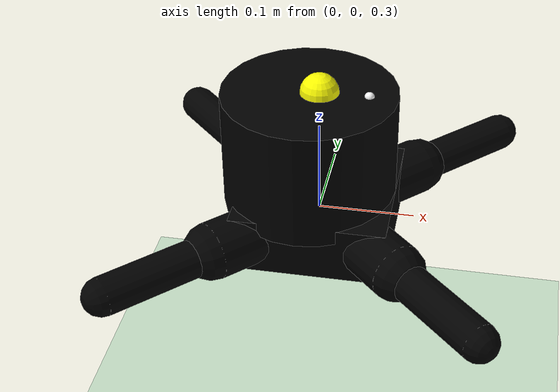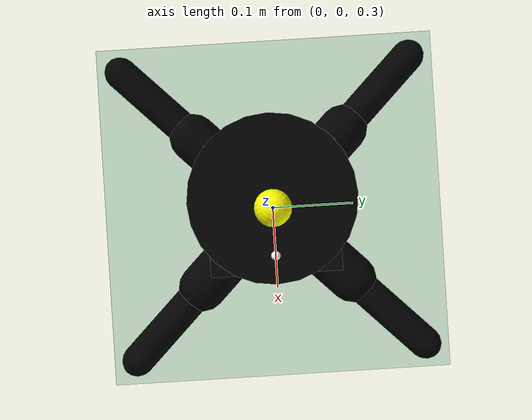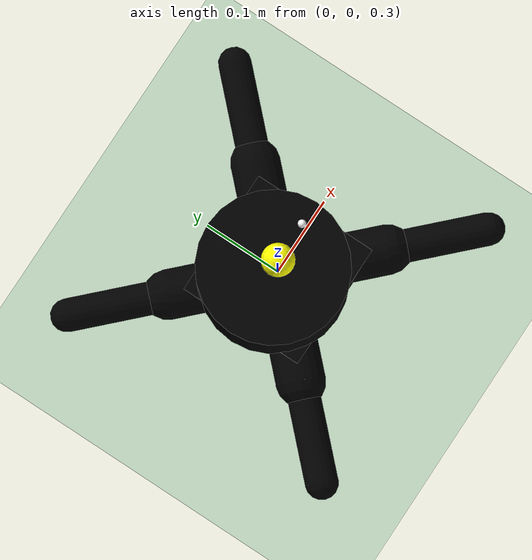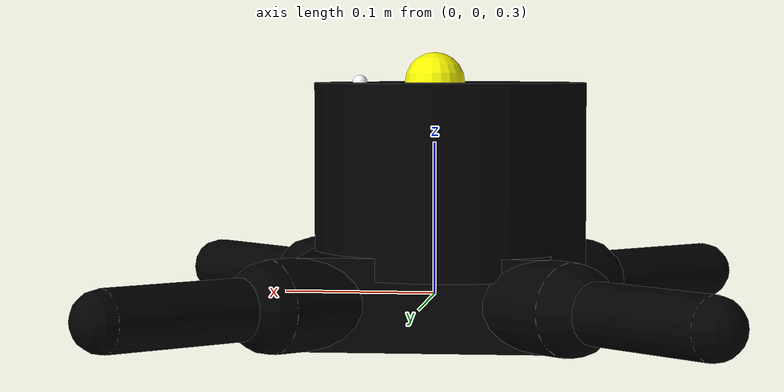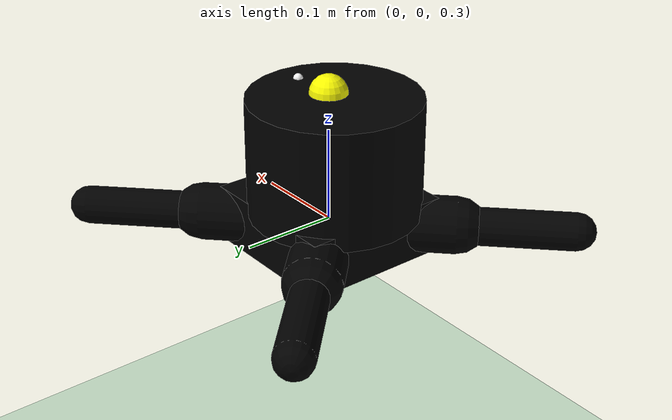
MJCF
<mujoco model="ant">
  <compiler angle="degree" coordinate="local" inertiafromgeom="true"/>
  <option integrator="RK4" timestep="0.01"/>
  <custom>
    <numeric data="0.0 0.0 0.55 1.0 0.0 0.0 0.0 0.0 1.0 0.0 -1.0 0.0 -1.0 0.0 1.0" name="init_qpos"/>
  </custom>
  <default>
    <joint armature="1" damping="1" limited="true"/>
    <geom conaffinity="0" condim="3" density="5.0" friction="1.5 0.1 0.1" margin="0.01" rgba="0.8 0.6 0.4 1"/>
  </default>
  <asset>
    <texture name="ceiling" builtin="gradient" height="100" rgb1="1 1 1" rgb2="0 0 0" type="skybox" width="100" mark="random" random="0.05" markrgb="0.5 0.5 0.5"/>
    <texture builtin="flat" height="1278" mark="cross" markrgb="1 1 1" name="texgeom" random="0.01" rgb1="0.8 0.6 0.4" rgb2="0.8 0.6 0.4" type="cube" width="127"/>
    <texture name="texplane" type="2d" builtin="checker" rgb1="0.2 0.2 0.2" rgb2="0.8 0.8 0.8" width="100" height="100" />
    <material name="MatPlane" reflectance="0.1" shininess="0" specular="1" texrepeat="60 60" texture="texplane"/>
    <material name="geom" texture="texgeom" texuniform="true"/>
  </asset>
  <worldbody>
    <light cutoff="90" diffuse="0.7 0.7 0.7" dir="0 0 -1" directional="false" exponent="10" pos="0 0 2" specular=".3 .3 .3"/>
    <geom conaffinity="1" condim="3" material="MatPlane" name="floor" pos="0 0 0" rgba="0.8 0.9 0.8 1" size="20 20 5" type="plane"/>
     <body name="torso" pos="0 0 0.3">
      <camera name="track" mode="trackcom" pos="0 -2 2" xyaxes="1 0 0 0 1 1"/>
      <camera euler="90 -90 0" fovy="120" name="rgb" pos="0.08 0.0 0.08"/>
      <site name="imu" rgba="1 1 0 1" pos="0.0 0.0 0.14" size="0.02" euler="0 180 0"/>
      <site name="front" rgba="1 1 1 1" pos="0.05 0 0.14" size="0.005"/>
      <geom name="base" pos="0 0 0" size="0.08 0.08 0.03" type="box" mass="0.359" rgba="0 0 0 1"/>
      <geom name="raspy_battery" fromto="-0.01 0 0.015 -0.01 0 0.14" size="0.09" type="cylinder" mass="0.612" rgba="0 0 0 1"/>
      <joint armature="0" damping="0" limited="false" margin="0.01" name="root" pos="0 0 0" type="free"/>

      <body name="front_left_leg" pos="0 0 0">
        <body name="aux_1" pos="0.057 0.057 0">
          <joint axis="0 0 1" name="hip_1" pos="0.0 0.0 0.0" range="-40 40" type="hinge"/>
          <geom fromto="0.0 0.0 0.0 0.037 0.037 0.0" name="hip_1_geom" size="0.03" type="capsule" mass="0.019" rgba="0 0 0 1"/>
          <body name="front_left_ankle" pos="0.037 0.037 0">
            <joint axis="-1 1 0" name="ankle_1" pos="0.0 0.0 0.0" range="0 60" type="hinge"/>
            <geom fromto="0.0 0.0 0.0 0.086 0.086 0.0" name="ankle_1_geom" size="0.02" type="capsule" mass="0.077" rgba="0 0 0 1"/>
          </body>
        </body>
      </body>
      <body name="rear_left_leg" pos="0 0 0">
        <body name="aux_2" pos="-0.057 0.057 0">
          <joint axis="0 0 1" name="hip_2" pos="0.0 0.0 0.0" range="-40 40" type="hinge"/>
          <geom fromto="0.0 0.0 0.0 -0.037 0.037 0.0" name="hip_2_geom" size="0.03" type="capsule" mass="0.019" rgba="0 0 0 1"/>
          <body name="rear_left_ankle" pos="-0.037 0.037 0">
            <joint axis="1 1 0" name="ankle_2" pos="0.0 0.0 0.0" range="-60 0" type="hinge"/>
            <geom fromto="0.0 0.0 0.0 -0.086 0.086 0.0" name="ankle_2_geom" size="0.02" type="capsule" mass="0.077" rgba="0 0 0 1"/>
          </body>
        </body>
      </body>
      <body name="rear_right_leg" pos="0 0 0">
        <body name="aux_3" pos="-0.057 -0.057 0">
          <joint axis="0 0 1" name="hip_3" pos="0.0 0.0 0.0" range="-40 40" type="hinge"/>
          <geom fromto="0.0 0.0 0.0 -0.037 -0.037 0.0" name="hip_3_geom" size="0.03" type="capsule" mass="0.019" rgba="0 0 0 1"/>
          <body name="rear_right_ankle" pos="-0.037 -0.037 0">
            <joint axis="-1 1 0" name="ankle_3" pos="0.0 0.0 0.0" range="-60 0" type="hinge"/>
            <geom fromto="0.0 0.0 0.0 -0.086 -0.086 0.0" name="ankle_3_geom" size="0.02" type="capsule" mass="0.077" rgba="0 0 0 1"/>
          </body>
        </body>
      </body>
      <body name="front_right_leg" pos="0 0 0">
        <body name="aux_4" pos="0.057 -0.057 0">
          <joint axis="0 0 1" name="hip_4" pos="0.0 0.0 0.0" range="-40 40" type="hinge"/>
          <geom fromto="0.0 0.0 0.0 0.037 -0.037 0.0" name="hip_4_geom" size="0.03" type="capsule" mass="0.019" rgba="0 0 0 1"/>
          <body name="front_right_ankle" pos="0.037 -0.037 0">
            <joint axis="1 1 0" name="ankle_4" pos="0.0 0.0 0.0" range="0 60" type="hinge"/>
            <geom fromto="0.0 0.0 0.0 0.086 -0.086 0.0" name="ankle_4_geom" size="0.02" type="capsule" mass="0.077" rgba="0 0 0 1"/>
          </body>
        </body>
      </body>
    </body>
  </worldbody>
  <actuator>
    <position joint="hip_1" kp="200" ctrllimited="true" ctrlrange="-0.69 0.69"/>
    <velocity joint="hip_1" kv="8.72"/>
    <position joint="ankle_1" kp="200" ctrllimited="true"  ctrlrange="0.0 1.05"/>
    <velocity joint="ankle_1" kv="7.85"/>
    <position joint="hip_2" kp="200" ctrllimited="true" ctrlrange="-0.69 0.69"/>
    <velocity joint="hip_2" kv="8.72"/>
    <position joint="ankle_2" kp="200" ctrllimited="true" ctrlrange="-1.05 0"/>
    <velocity joint="ankle_2" kv="7.85"/>
    <position joint="hip_3" kp="200" ctrllimited="true" ctrlrange="-0.69 0.69"/>
    <velocity joint="hip_3" kv="8.72"/>
    <position joint="ankle_3" kp="200" ctrllimited="true" ctrlrange="-1.05 0"/>
    <velocity joint="ankle_3" kv="7.85"/>
    <position joint="hip_4" kp="200" ctrllimited="true" ctrlrange="-0.69 0.69"/>
    <velocity joint="hip_4" kv="8.72"/>
    <position joint="ankle_4" kp="200" ctrllimited="true" ctrlrange="0 1.05"/>
    <velocity joint="ankle_4" kv="7.85"/>
  </actuator>
  <sensor>
    <gyro          name="gyro" site="imu" noise="0.01" cutoff="34.9"/>
    <accelerometer name="accel" site="imu" noise="0.01" cutoff="157"/>
    <magnetometer  name="magneto" site="imu"/>
  </sensor>
</mujoco>
